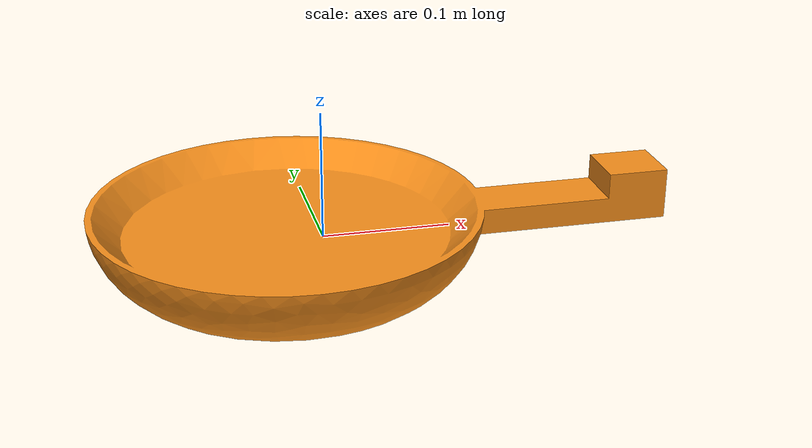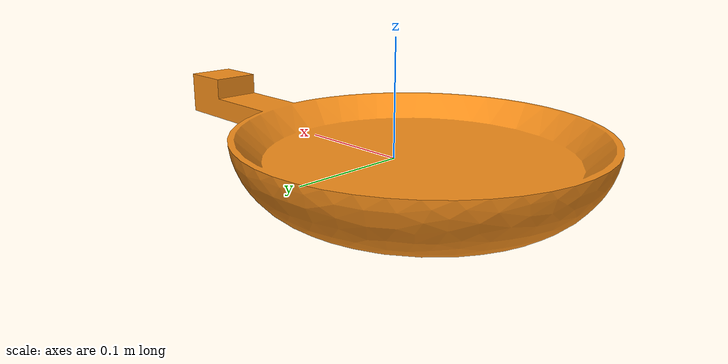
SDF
<?xml version="1.0" ?>
<sdf version="1.6">
  <model name="frypan">
  <pose>0 0 0 0 0 0</pose>
    <link name="frypan">
      <pose>0 0 0 0 0 0</pose>
      <visual name="frypan_visual">
        <geometry><mesh><uri>model://frypan/meshes/frypan.stl</uri></mesh></geometry>
        <material>
        <script>
          <uri>file://media/materials/scripts/gazebo.material</uri>
          <name>Gazebo/Orange</name>
        </script>
        </material>
      </visual>
      <collision name="frypan_collision">
        <geometry><mesh><uri>model://frypan/meshes/frypan.stl</uri></mesh></geometry>
        <surface>
          <friction>
            <ode>
              <mu>1.0</mu>
              <mu2>1.0</mu2>
            </ode>
          </friction>
        </surface>
      </collision>
      <inertial>
        <mass>0.6</mass>
        <!-- とりあえず動かす用の“仮”慣性（後で詰める） -->
        <inertia>
          <ixx>0.002</ixx>
          <iyy>0.002</iyy>
          <izz>0.002</izz>
          <ixy>0.0</ixy>
          <ixz>0.0</ixz>
          <iyz>0.0</iyz>
        </inertia>
      </inertial>
    </link>

  </model>
</sdf>
